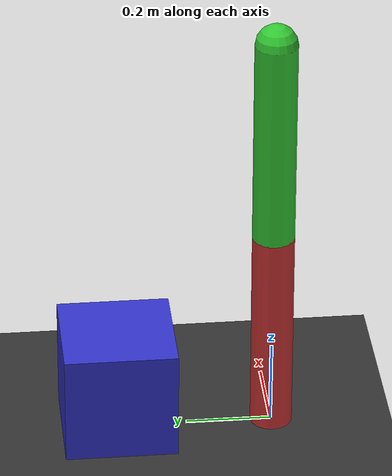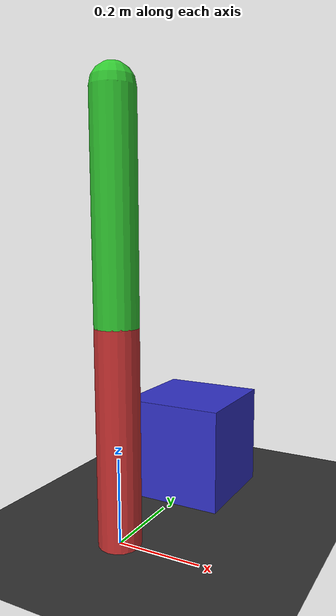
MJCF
<mujoco model="planar_linkage">

    <option gravity="0 0 -9.81" timestep="0.002"/>

    <asset>
        <texture type="skybox" builtin="gradient" rgb1="0.3 0.5 0.7" rgb2="0 0 0" width="512" height="512"/>
    </asset>

    <worldbody>

            <geom name="floor" type="plane" size="5 5 0.1" rgba="0.2 0.2 0.2 1"/>

            <light directional="true" diffuse=".8 .8 .8" specular=".2 .2 .2" pos="0 0 5" dir="0 0 -1"/>

            <body name = "base" pos = "0 0 0">

                <body name = "corpo" pos = "0 0 0.25">
                    <geom name = "link1" type = "capsule" size = "0.05 0.25" rgba = "0.8 0.2 0.2 1" density = "1255"/>
                    <joint name = "junta1" type = "hinge" pos = "0 0 -0.25" axis = "1 0 0"  damping="1"/>

                    <body name = "link2" pos = "0 0 0.5">
                        <geom name = "link2" type = "capsule" size = "0.05 0.25" rgba = "0.2 0.8 0.2 1" density = "1255"/>
                        <joint name = "junta2" type = "hinge" pos = "0 0 -0.25" axis = "1 0 0"  damping="1"/>
                    </body>
                </body>
            </body>

            <body name = "box" pos = "0 0.365165 0.1325825">
                <geom name = "box" type="box" size = "0.1325825 0.1325825 0.1325825" rgba = "0.2 0.2 0.8 1" density = "1255"/>
            </body>
    </worldbody>

    <actuator>
        <position name="motor1" joint="junta1" kp="100"/>
        <position name="motor2" joint="junta2" kp="100"/>
    </actuator>
</mujoco>
